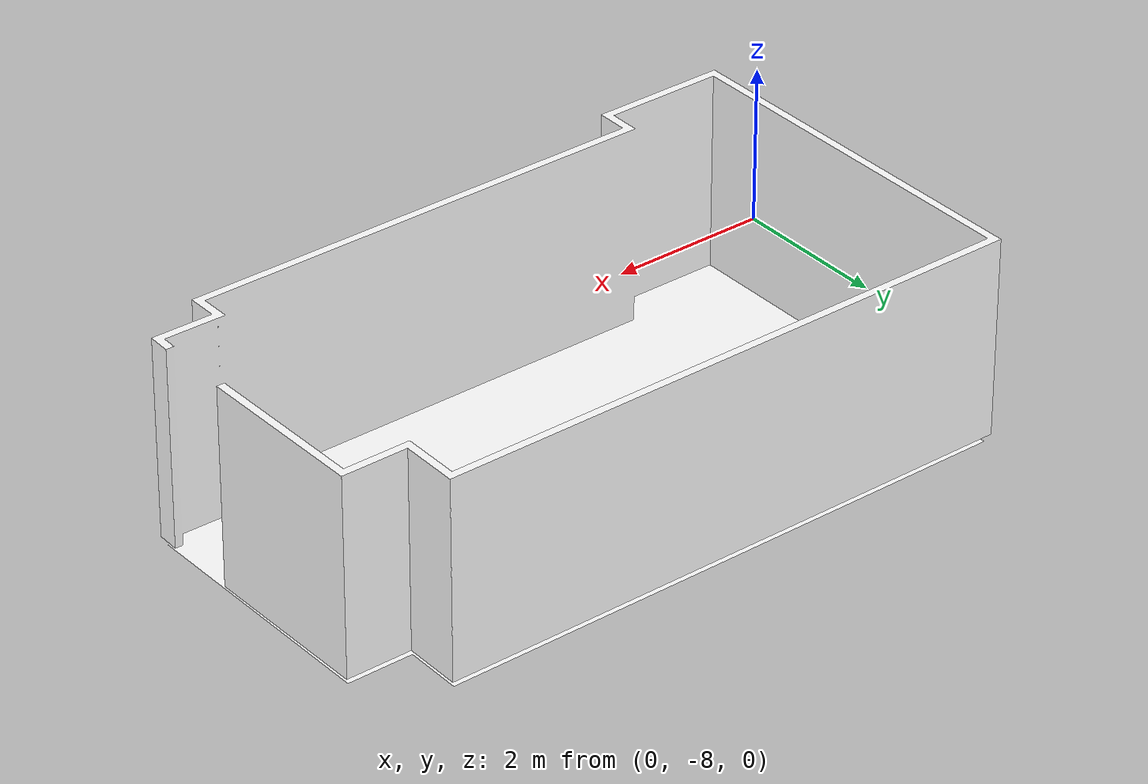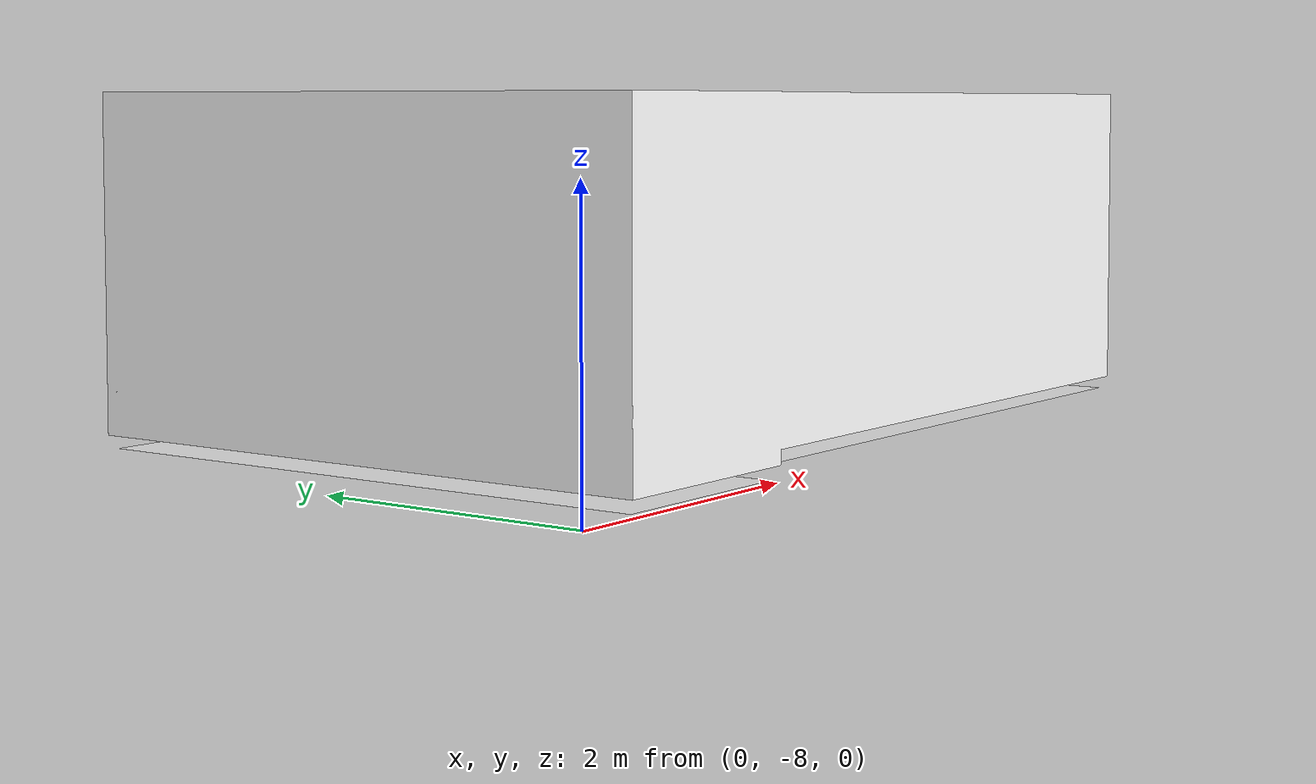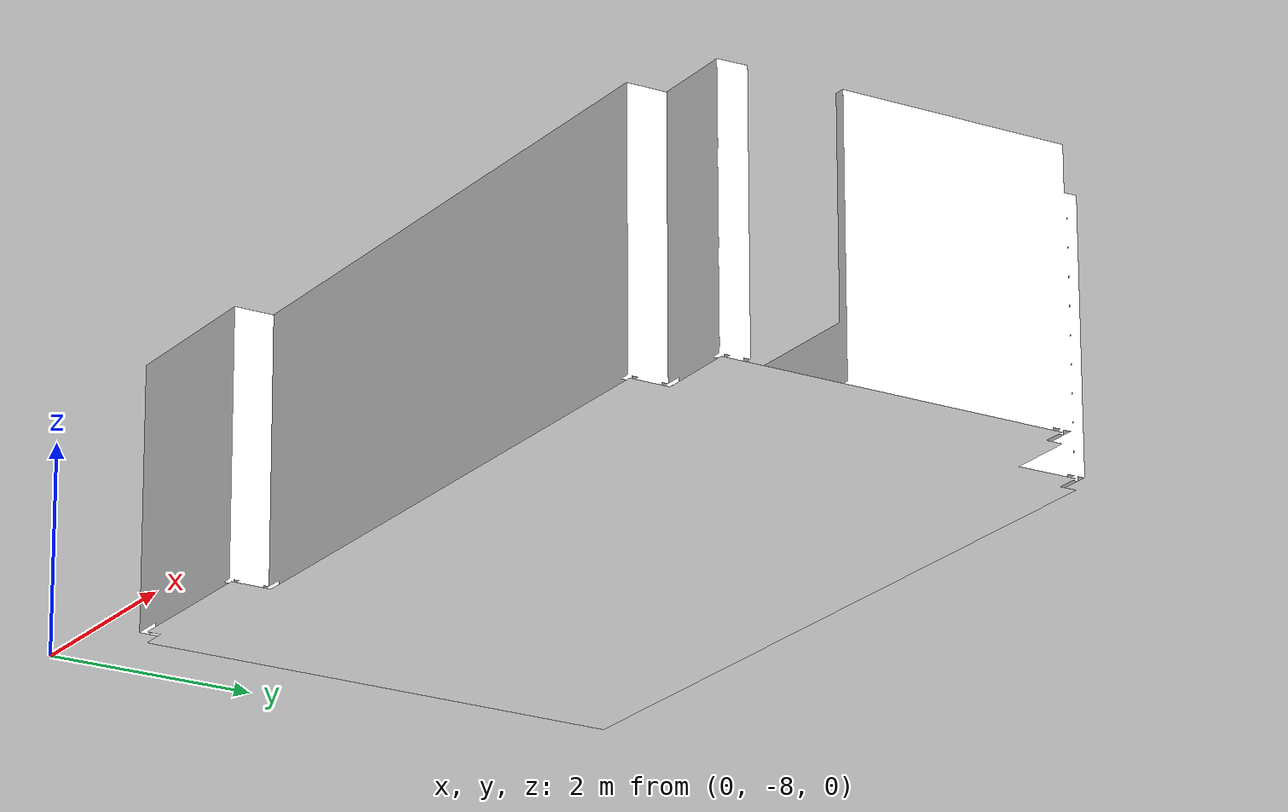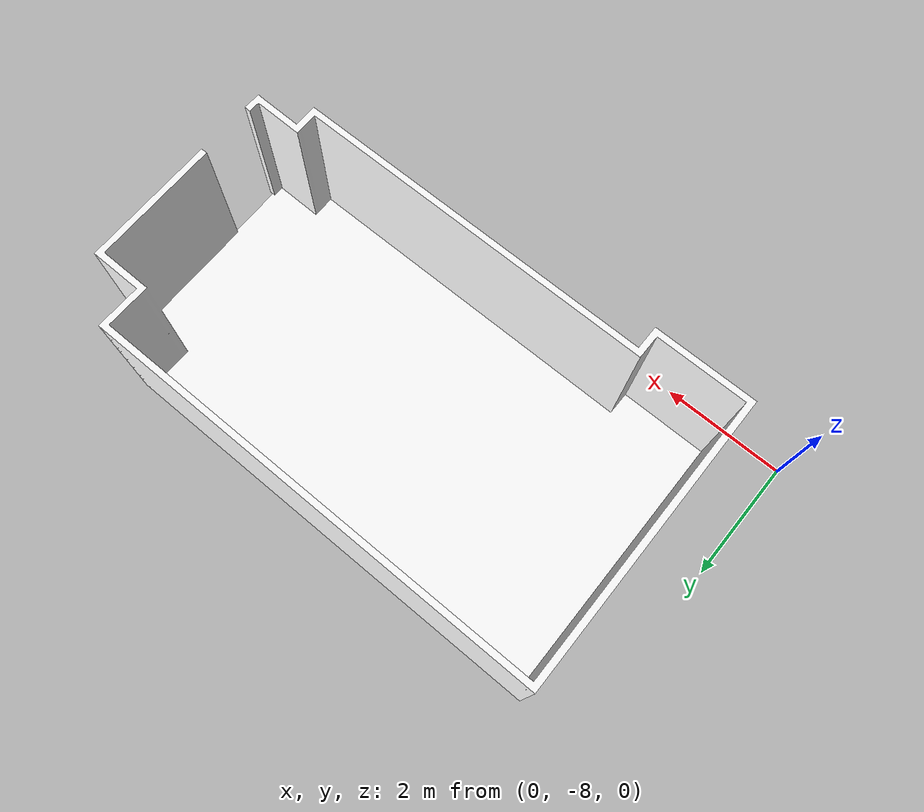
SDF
<?xml version='1.0' encoding='utf-8'?>
<sdf version="1.7">
  <model name="empty_room_ground">
    <static>true</static>
    <link name="floor_1">
      <visual name="visual">
        <geometry>
          <mesh>
            <uri>package://minipock_gz/worlds/models/empty_room_ground/meshes/floor_1.obj</uri>
          </mesh>
        </geometry>
        <material>
          <diffuse>1.0 1.0 1.0</diffuse>
          <specular>0.1 0.1 0.1</specular>
          <pbr>
            <metal>
              <metalness>0.0</metalness>
              <albedo_map>package://minipock_gz/worlds/models/empty_room_ground/meshes/blue_linoleum.png</albedo_map>
            </metal>
          </pbr>
          <script>
            <uri>package://minipock_gz/worlds/models/empty_room_ground/meshes/</uri>
            <name>floor_1_Diffuse</name>
          </script>
        </material>
      </visual>
      <collision name="collision">
        <geometry>
          <mesh>
            <uri>package://minipock_gz/worlds/models/empty_room_ground/meshes/floor_1.obj</uri>
          </mesh>
        </geometry>
        <surface>
          <contact>
            <collide_bitmask>0x01</collide_bitmask>
          </contact>
        </surface>
      </collision>
    </link>
    <link name="wall_1">
      <visual name="wall_1">
        <geometry>
          <mesh>
            <uri>package://minipock_gz/worlds/models/empty_room_ground/meshes/wall_1.obj</uri>
          </mesh>
        </geometry>
        <transparency>0.0</transparency>
        <material>
          <diffuse>1.0 1.0 1.0</diffuse>
          <specular>0.1 0.1 0.1</specular>
          <pbr>
            <metal>
              <metalness>0.0</metalness>
              <albedo_map>package://minipock_gz/worlds/models/empty_room_ground/meshes/default.png</albedo_map>
            </metal>
          </pbr>
          <script>
            <uri>package://minipock_gz/worlds/models/empty_room_ground/meshes/</uri>
            <name>wall_1_Diffuse</name>
          </script>
        </material>
      </visual>
      <collision name="collision">
        <geometry>
          <mesh>
            <uri>package://minipock_gz/worlds/models/empty_room_ground/meshes/wall_1.obj</uri>
          </mesh>
        </geometry>
        <surface>
          <contact>
            <collide_bitmask>0x01</collide_bitmask>
          </contact>
        </surface>
      </collision>
      <pose>0.9486207365517678 -7.624443153884247 0 0 0 0</pose>
    </link>
  </model>
</sdf>
